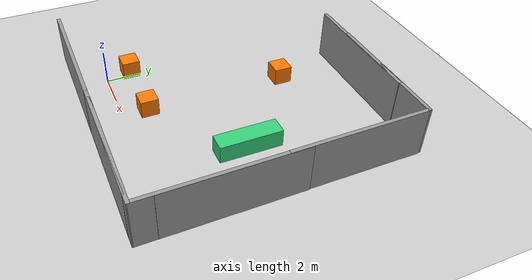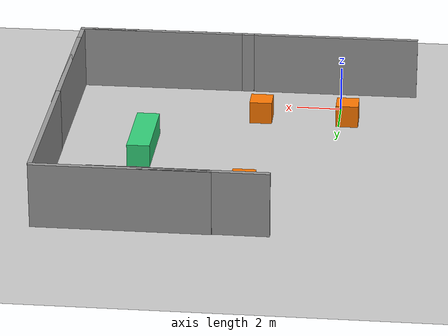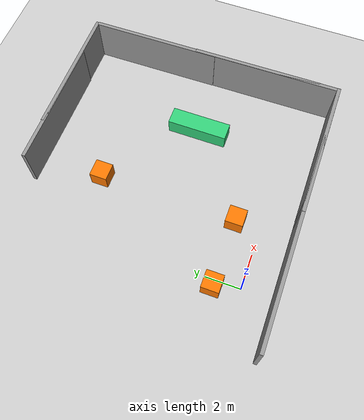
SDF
<sdf version="1.7">
 <world name="default">
  <model name="ground_plane">
   <static>1</static>
   <link name="link">
    <collision name="collision">
     <geometry><plane><normal>0 0 1</normal><size>100 100</size></plane></geometry>
     <surface><friction><ode><mu>100</mu><mu2>50</mu2></ode></friction></surface>
    </collision>
    <visual name="visual">
     <cast_shadows>0</cast_shadows>
     <geometry><plane><normal>0 0 1</normal><size>100 100</size></plane></geometry>
     <material>
      <script><uri>file://media/materials/scripts/gazebo.material</uri><name>Gazebo/Grey</name></script>
     </material>
    </visual>
   </link>
  </model>
  <model name="grey_wall_clone_1">
   <static>1</static>
   <link name="link">
    <pose>0 0 1.4 0 -0 0</pose>
    <collision name="collision"><geometry><box><size>7.5 0.2 2.8</size></box></geometry></collision>
    <visual name="visual">
     <cast_shadows>0</cast_shadows>
     <geometry><box><size>7.5 0.2 2.8</size></box></geometry>
     <material>
      <script>
       <uri>model://grey_wall/materials/scripts</uri>
       <uri>model://grey_wall/materials/textures</uri>
       <name>vrc/grey_wall</name>
      </script>
     </material>
    </visual>
   </link>
   <pose>0.390636 -1.78664 0 0 -0 0</pose>
  </model>
  <model name="grey_wall_clone_2">
   <static>1</static>
   <link name="link">
    <pose>0 0 1.4 0 -0 0</pose>
    <collision name="collision"><geometry><box><size>7.5 0.2 2.8</size></box></geometry></collision>
    <visual name="visual">
     <cast_shadows>0</cast_shadows>
     <geometry><box><size>7.5 0.2 2.8</size></box></geometry>
     <material>
      <script>
       <uri>model://grey_wall/materials/scripts</uri>
       <uri>model://grey_wall/materials/textures</uri>
       <name>vrc/grey_wall</name>
      </script>
     </material>
    </visual>
   </link>
   <pose>7.89503 -1.78631 0 0 -0 0</pose>
  </model>
  <model name="grey_wall_clone_0_clone_clone">
   <static>1</static>
   <link name="link">
    <pose>0 0 1.4 0 -0 0</pose>
    <collision name="collision"><geometry><box><size>7.5 0.2 2.8</size></box></geometry></collision>
    <visual name="visual">
     <cast_shadows>0</cast_shadows>
     <geometry><box><size>7.5 0.2 2.8</size></box></geometry>
     <material>
      <script>
       <uri>model://grey_wall/materials/scripts</uri>
       <uri>model://grey_wall/materials/textures</uri>
       <name>vrc/grey_wall</name>
      </script>
     </material>
    </visual>
   </link>
   <pose>12.0671 3.06762 0 0 -0 1.58052</pose>
  </model>
  <model name="grey_wall_clone_0_clone_clone_0">
   <static>1</static>
   <link name="link">
    <pose>0 0 1.4 0 -0 0</pose>
    <collision name="collision"><geometry><box><size>7.5 0.2 2.8</size></box></geometry></collision>
    <visual name="visual">
     <cast_shadows>0</cast_shadows>
     <geometry><box><size>7.5 0.2 2.8</size></box></geometry>
     <material>
      <script>
       <uri>model://grey_wall/materials/scripts</uri>
       <uri>model://grey_wall/materials/textures</uri>
       <name>vrc/grey_wall</name>
      </script>
     </material>
    </visual>
   </link>
   <pose>11.9807 9.37009 0 0 -0 1.58052</pose>
  </model>
  <model name="unit_box_0_clone_1">
   <link name="link">
    <inertial>
     <mass>1</mass>
     <inertia>
      <ixx>0.166667</ixx>
      <ixy>0</ixy>
      <ixz>0</ixz>
      <iyy>0.166667</iyy>
      <iyz>0</iyz>
      <izz>0.166667</izz>
     </inertia>
    </inertial>
    <visual name="visual">
     <geometry><box><size>1 1 1</size></box></geometry>
     <material>
      <script><name>Gazebo/Grey</name><uri>file://media/materials/scripts/gazebo.material</uri></script>
      <shader type="pixel"><normal_map>__default__</normal_map></shader>
      <ambient>1 0.471 0 1</ambient>
      <diffuse>0.7 0.7 0.7 1</diffuse>
      <specular>0.01 0.01 0.01 1</specular>
      <emissive>0 0 0 1</emissive>
     </material>
    </visual>
    <collision name="collision">
     <geometry><box><size>1 1 1</size></box></geometry>
     <surface>
      <friction>
       <ode><mu>1</mu><mu2>1</mu2><fdir1>0 0 0</fdir1><slip1>0</slip1><slip2>0</slip2></ode>
       <torsional>
        <coefficient>1</coefficient>
        <patch_radius>0</patch_radius>
        <surface_radius>0</surface_radius>
        <use_patch_radius>1</use_patch_radius>
        <ode><slip>0</slip></ode>
       </torsional>
      </friction>
      <bounce><restitution_coefficient>0</restitution_coefficient><threshold>1e+06</threshold></bounce>
      <contact>
       <collide_without_contact>0</collide_without_contact>
       <collide_without_contact_bitmask>1</collide_without_contact_bitmask>
       <collide_bitmask>1</collide_bitmask>
       <ode>
        <soft_cfm>0</soft_cfm>
        <soft_erp>0.2</soft_erp>
        <kp>1e+13</kp>
        <kd>1</kd>
        <max_vel>0.01</max_vel>
        <min_depth>0</min_depth>
       </ode>
       <bullet>
        <split_impulse>1</split_impulse>
        <split_impulse_penetration_threshold>-0.01</split_impulse_penetration_threshold>
        <soft_cfm>0</soft_cfm>
        <soft_erp>0.2</soft_erp>
        <kp>1e+13</kp>
        <kd>1</kd>
       </bullet>
      </contact>
     </surface>
    </collision>
   </link>
   <static>0</static>
   <pose>-0.363984 1.48276 0.499995 -1e-05 0 0</pose>
  </model>
  <model name="unloading">
   <link name="link">
    <inertial>
     <mass>1</mass>
     <inertia>
      <ixx>0.166667</ixx>
      <ixy>0</ixy>
      <ixz>0</ixz>
      <iyy>0.166667</iyy>
      <iyz>0</iyz>
      <izz>0.166667</izz>
     </inertia>
    </inertial>
    <visual name="visual">
     <geometry><box><size>1 3.48173 1</size></box></geometry>
     <material>
      <script><name>Gazebo/Grey</name><uri>file://media/materials/scripts/gazebo.material</uri></script>
      <shader type="pixel"><normal_map>__default__</normal_map></shader>
      <ambient>0.2 0.82 0.478 1</ambient>
      <diffuse>0.7 0.7 0.7 1</diffuse>
      <specular>0.01 0.01 0.01 1</specular>
      <emissive>0 0 0 1</emissive>
     </material>
    </visual>
    <collision name="collision">
     <geometry><box><size>1 3.48173 1</size></box></geometry>
     <surface>
      <friction>
       <ode><mu>1</mu><mu2>1</mu2><fdir1>0 0 0</fdir1><slip1>0</slip1><slip2>0</slip2></ode>
       <torsional>
        <coefficient>1</coefficient>
        <patch_radius>0</patch_radius>
        <surface_radius>0</surface_radius>
        <use_patch_radius>1</use_patch_radius>
        <ode><slip>0</slip></ode>
       </torsional>
      </friction>
      <bounce><restitution_coefficient>0</restitution_coefficient><threshold>1e+06</threshold></bounce>
      <contact>
       <collide_without_contact>0</collide_without_contact>
       <collide_without_contact_bitmask>1</collide_without_contact_bitmask>
       <collide_bitmask>1</collide_bitmask>
       <ode>
        <soft_cfm>0</soft_cfm>
        <soft_erp>0.2</soft_erp>
        <kp>1e+13</kp>
        <kd>1</kd>
        <max_vel>0.01</max_vel>
        <min_depth>0</min_depth>
       </ode>
       <bullet>
        <split_impulse>1</split_impulse>
        <split_impulse_penetration_threshold>-0.01</split_impulse_penetration_threshold>
        <soft_cfm>0</soft_cfm>
        <soft_erp>0.2</soft_erp>
        <kp>1e+13</kp>
        <kd>1</kd>
       </bullet>
      </contact>
     </surface>
    </collision>
   </link>
   <static>0</static>
   <pose>8.36749 5.29346 0.499995 -1e-06 -6e-06 -3e-06</pose>
  </model>
  <model name="grey_wall_clone_0_clone_clone_5">
   <static>1</static>
   <link name="link">
    <pose>0 0 1.4 0 -0 0</pose>
    <collision name="collision"><geometry><box><size>7.5 0.2 2.8</size></box></geometry></collision>
    <visual name="visual">
     <cast_shadows>0</cast_shadows>
     <geometry><box><size>7.5 0.2 2.8</size></box></geometry>
     <material>
      <script>
       <uri>model://grey_wall/materials/scripts</uri>
       <uri>model://grey_wall/materials/textures</uri>
       <name>vrc/grey_wall</name>
      </script>
     </material>
    </visual>
   </link>
   <pose>5.89077 13.1268 0 0 -0 3.14078</pose>
  </model>
  <model name="grey_wall_clone_0_clone_clone_5_clone">
   <static>1</static>
   <link name="link">
    <pose>0 0 1.4 0 -0 0</pose>
    <collision name="collision"><geometry><box><size>7.5 0.2 2.8</size></box></geometry></collision>
    <visual name="visual">
     <cast_shadows>0</cast_shadows>
     <geometry><box><size>7.5 0.2 2.8</size></box></geometry>
     <material>
      <script>
       <uri>model://grey_wall/materials/scripts</uri>
       <uri>model://grey_wall/materials/textures</uri>
       <name>vrc/grey_wall</name>
      </script>
     </material>
    </visual>
   </link>
   <pose>8.26819 13.1634 0 0 -0 3.14078</pose>
  </model>
  <model name="grey_wall_clone_0_clone_clone_5_clone_0">
   <static>1</static>
   <link name="link">
    <pose>0 0 1.4 0 -0 0</pose>
    <collision name="collision"><geometry><box><size>7.5 0.2 2.8</size></box></geometry></collision>
    <visual name="visual">
     <cast_shadows>0</cast_shadows>
     <geometry><box><size>7.5 0.2 2.8</size></box></geometry>
     <material>
      <script>
       <uri>model://grey_wall/materials/scripts</uri>
       <uri>model://grey_wall/materials/textures</uri>
       <name>vrc/grey_wall</name>
      </script>
     </material>
    </visual>
   </link>
   <pose>8.45087 -1.78191 0 0 -0 3.14078</pose>
  </model>
  <model name="grey_wall_clone_0_clone_clone_clone">
   <static>1</static>
   <link name="link">
    <pose>0 0 1.4 0 -0 0</pose>
    <collision name="collision"><geometry><box><size>7.5 0.2 2.8</size></box></geometry></collision>
    <visual name="visual">
     <cast_shadows>0</cast_shadows>
     <geometry><box><size>7.5 0.2 2.8</size></box></geometry>
     <material>
      <script>
       <uri>model://grey_wall/materials/scripts</uri>
       <uri>model://grey_wall/materials/textures</uri>
       <name>vrc/grey_wall</name>
      </script>
     </material>
    </visual>
   </link>
   <pose>12.0678 1.91314 0 0 -0 1.58052</pose>
  </model>
  <model name="deletion_wall">
   <static>1</static>
   <link name="sensing_link">
    <gravity>0</gravity>
    <sensor name="object_disposal_contact" type="contact">
     <update_rate>10</update_rate>
     <contact><collision>collision</collision><topic>__default_topic__</topic></contact>
    </sensor>
    <collision name="collision"><geometry><box><size>0.1 1 1</size></box></geometry></collision>
    <visual name="visual">
     <geometry><box><size>0.1 1 1</size></box></geometry>
     <cast_shadows>0</cast_shadows>
     <transparency>100</transparency>
    </visual>
   </link>
   <plugin name="object_disposal_plugin" filename="libObjectDisposalPlugin.so">
    <contact_sensor_name>object_disposal_contact</contact_sensor_name>
    <contact_side_normal>1 0 0</contact_side_normal>
    <disposal_pose>30 30 0 0 0 0</disposal_pose>
    <update_rate>5</update_rate>
   </plugin>
   <pose>18.5106 16.0676 0 0 -0 0</pose>
  </model>
  <model name="unit_box_0_clone_clone">
   <link name="link">
    <inertial>
     <mass>1</mass>
     <inertia>
      <ixx>0.166667</ixx>
      <ixy>0</ixy>
      <ixz>0</ixz>
      <iyy>0.166667</iyy>
      <iyz>0</iyz>
      <izz>0.166667</izz>
     </inertia>
    </inertial>
    <visual name="visual">
     <geometry><box><size>1 1 1</size></box></geometry>
     <material>
      <script><name>Gazebo/Grey</name><uri>file://media/materials/scripts/gazebo.material</uri></script>
      <shader type="pixel"><normal_map>__default__</normal_map></shader>
      <ambient>1 0.471 0 1</ambient>
      <diffuse>0.7 0.7 0.7 1</diffuse>
      <specular>0.01 0.01 0.01 1</specular>
      <emissive>0 0 0 1</emissive>
     </material>
    </visual>
    <collision name="collision">
     <geometry><box><size>1 1 1</size></box></geometry>
     <surface>
      <friction>
       <ode><mu>1</mu><mu2>1</mu2><fdir1>0 0 0</fdir1><slip1>0</slip1><slip2>0</slip2></ode>
       <torsional>
        <coefficient>1</coefficient>
        <patch_radius>0</patch_radius>
        <surface_radius>0</surface_radius>
        <use_patch_radius>1</use_patch_radius>
        <ode><slip>0</slip></ode>
       </torsional>
      </friction>
      <bounce><restitution_coefficient>0</restitution_coefficient><threshold>1e+06</threshold></bounce>
      <contact>
       <collide_without_contact>0</collide_without_contact>
       <collide_without_contact_bitmask>1</collide_without_contact_bitmask>
       <collide_bitmask>1</collide_bitmask>
       <ode>
        <soft_cfm>0</soft_cfm>
        <soft_erp>0.2</soft_erp>
        <kp>1e+13</kp>
        <kd>1</kd>
        <max_vel>0.01</max_vel>
        <min_depth>0</min_depth>
       </ode>
       <bullet>
        <split_impulse>1</split_impulse>
        <split_impulse_penetration_threshold>-0.01</split_impulse_penetration_threshold>
        <soft_cfm>0</soft_cfm>
        <soft_erp>0.2</soft_erp>
        <kp>1e+13</kp>
        <kd>1</kd>
       </bullet>
      </contact>
     </surface>
    </collision>
   </link>
   <static>0</static>
   <pose>3.57518 9.46659 0.499995 0 -1e-05 0</pose>
  </model>
  <model name="unit_box_0_clone_clone_0">
   <link name="link">
    <inertial>
     <mass>1</mass>
     <inertia>
      <ixx>0.166667</ixx>
      <ixy>0</ixy>
      <ixz>0</ixz>
      <iyy>0.166667</iyy>
      <iyz>0</iyz>
      <izz>0.166667</izz>
     </inertia>
    </inertial>
    <visual name="visual">
     <geometry><box><size>1 1 1</size></box></geometry>
     <material>
      <script><name>Gazebo/Grey</name><uri>file://media/materials/scripts/gazebo.material</uri></script>
      <shader type="pixel"><normal_map>__default__</normal_map></shader>
      <ambient>1 0.471 0 1</ambient>
      <diffuse>0.7 0.7 0.7 1</diffuse>
      <specular>0.01 0.01 0.01 1</specular>
      <emissive>0 0 0 1</emissive>
     </material>
    </visual>
    <collision name="collision">
     <geometry><box><size>1 1 1</size></box></geometry>
     <surface>
      <friction>
       <ode><mu>1</mu><mu2>1</mu2><fdir1>0 0 0</fdir1><slip1>0</slip1><slip2>0</slip2></ode>
       <torsional>
        <coefficient>1</coefficient>
        <patch_radius>0</patch_radius>
        <surface_radius>0</surface_radius>
        <use_patch_radius>1</use_patch_radius>
        <ode><slip>0</slip></ode>
       </torsional>
      </friction>
      <bounce><restitution_coefficient>0</restitution_coefficient><threshold>1e+06</threshold></bounce>
      <contact>
       <collide_without_contact>0</collide_without_contact>
       <collide_without_contact_bitmask>1</collide_without_contact_bitmask>
       <collide_bitmask>1</collide_bitmask>
       <ode>
        <soft_cfm>0</soft_cfm>
        <soft_erp>0.2</soft_erp>
        <kp>1e+13</kp>
        <kd>1</kd>
        <max_vel>0.01</max_vel>
        <min_depth>0</min_depth>
       </ode>
       <bullet>
        <split_impulse>1</split_impulse>
        <split_impulse_penetration_threshold>-0.01</split_impulse_penetration_threshold>
        <soft_cfm>0</soft_cfm>
        <soft_erp>0.2</soft_erp>
        <kp>1e+13</kp>
        <kd>1</kd>
       </bullet>
      </contact>
     </surface>
    </collision>
   </link>
   <static>0</static>
   <pose>3.5136 1.44086 0.499995 1e-05 -0 0</pose>
  </model>
 </world>
</sdf>
